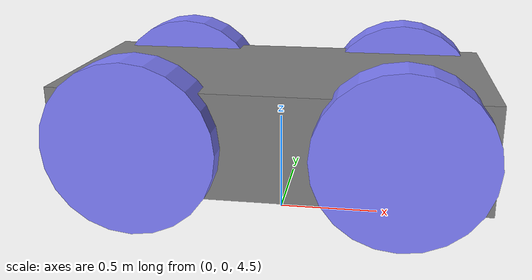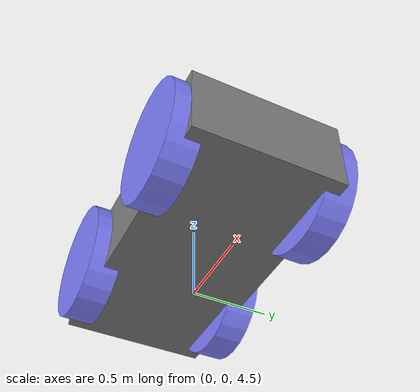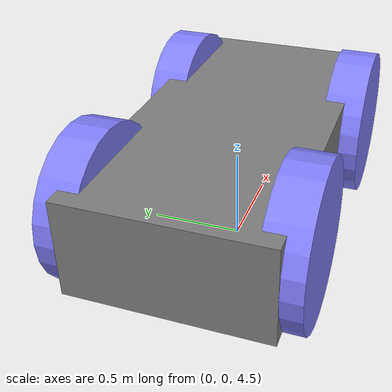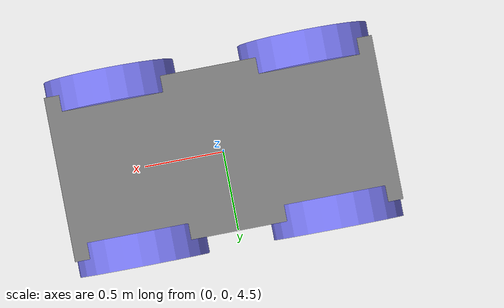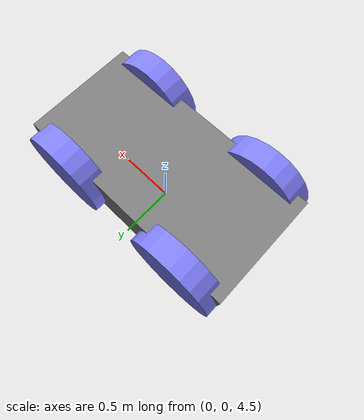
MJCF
<mujoco>

    <asset>
        <texture name="grid" type="2d" builtin="checker" width="512" height="512" rgb1=".1 .2 .3" rgb2=".2 .3 .4"/>
        <material name="grid" texture="grid" texrepeat="1 1" texuniform="true" reflectance=".2"/>
    </asset>

    <default>

        <joint damping=".03" actuatorfrcrange="-1000 1000" stiffness="0.01"/>

        <default class="wheel">
            <geom type="cylinder" size="0.4 0.1" rgba=".5 .5 1 1"/>
        </default>

    </default>

    <worldbody>

    <light dir="0 0 -1" pos="0 0 1000" diffuse="1 1 1"/>

    <geom type="plane" size="100 100 .01" material="grid"/>

    <body name="car" pos="0 0 5">
        <freejoint/>

        <light dir="1 0 0" pos="1.2 0 0.125" diffuse="1 1 1"/>

        <geom name="chasis" type="box" size="1 0.5 0.25"/>

        <body name="left back wheel" pos="-0.6 0.5 0" zaxis="0 1 0">
            <joint name="left back"/>
            <geom class="wheel"/>
        </body>

        <body name="right back wheel" pos="-0.6 -0.5 0" zaxis="0 1 0">
            <joint name="right back"/>
            <geom class="wheel"/>
        </body>

        <body name="left front wheel" pos="0.6 0.5 0" zaxis="0 1 0">
            <joint name="left front turn" type="hinge" axis="0 1 0" limited="true" range="-45 45"/>
            <joint name="left front"/>
            <geom class="wheel"/>
        </body>

        <body name="right front wheel" pos="0.6 -0.5 0" zaxis="0 1 0">
            <joint name="right front turn" type="hinge" axis="0 1 0" limited="true" range="-45 45"/>
            <joint name="right front"/>
            <geom class="wheel"/>
        </body>

    </body>

    <camera name="cam1" pos="-5 0 10" euler="0 -45 -90" fovy="90" mode="trackcom" target="car"/>

    </worldbody>

    <tendon>
        <fixed name="forward">
            <joint joint="left back" coef="1000"/>
            <joint joint="right back" coef="1000"/>
        </fixed>

         <fixed name="turn">
            <joint joint="left front turn" coef="10"/>
            <joint joint="right front turn" coef="10"/>
        </fixed>
    </tendon>

    <actuator>
        <motor name="forward" tendon="forward" ctrlrange="-1 1"/>
        <motor name="turn" tendon="turn" ctrlrange="-45 45"/>
    </actuator>

</mujoco>
